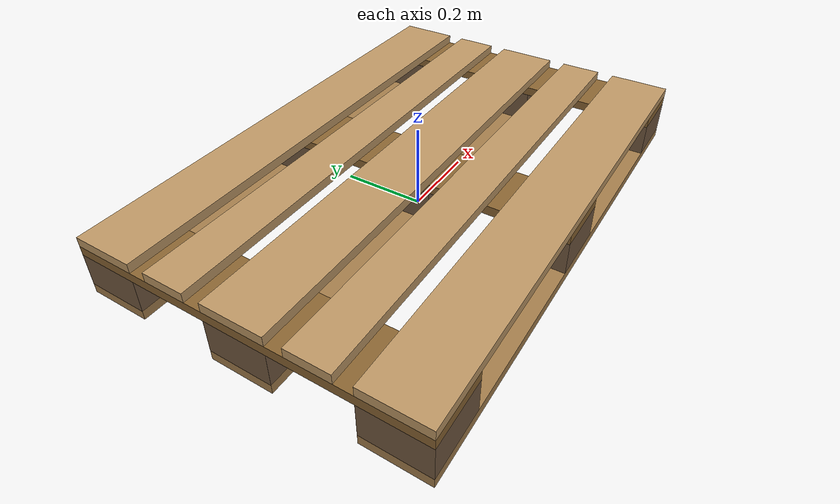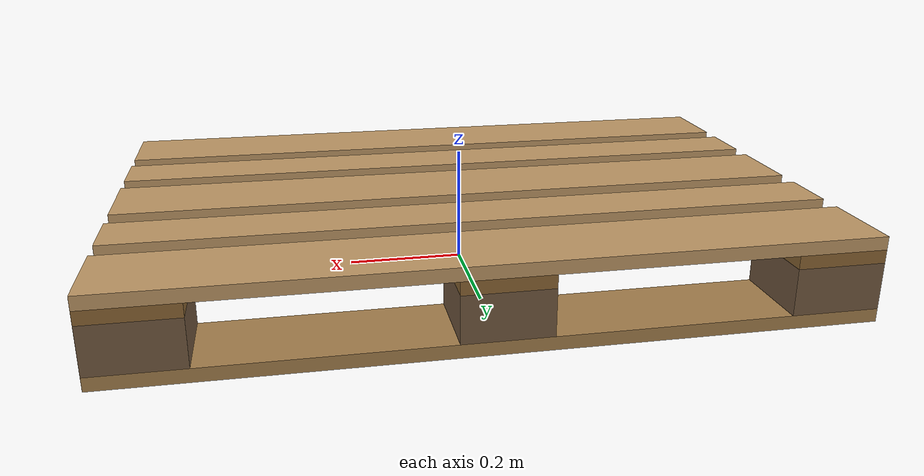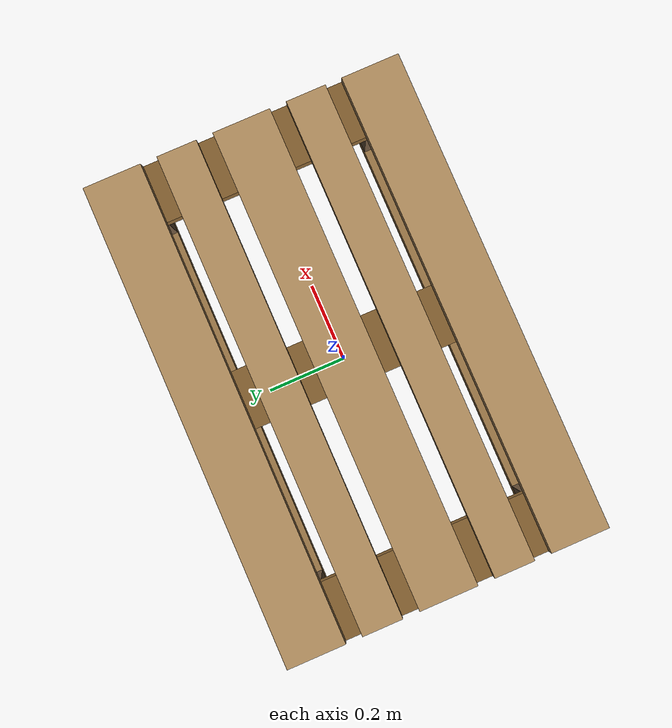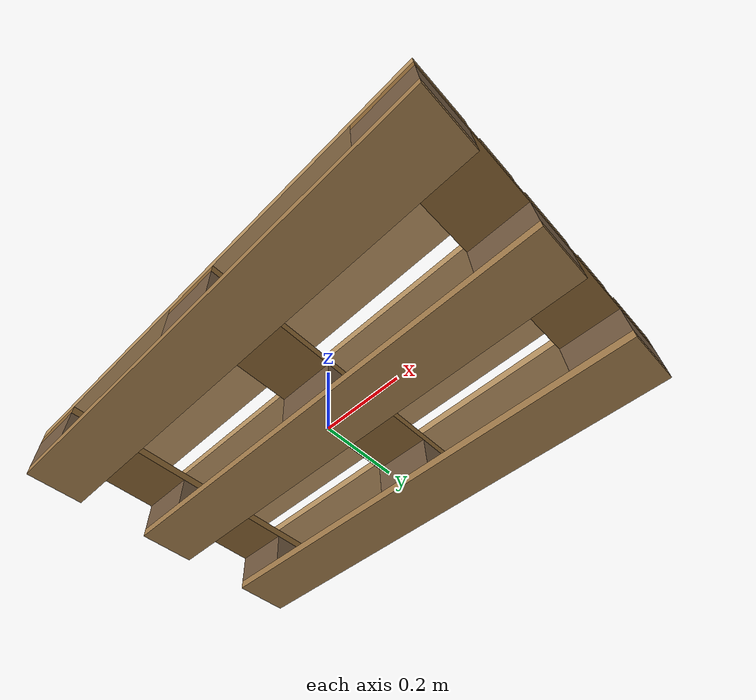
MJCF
<mujoco model="euro_pallet_realistic">
  <compiler angle="degree" coordinate="local"/>

  <asset>
    <material name="wood_light" rgba="0.75 0.60 0.40 1" reflectance="0.1"/>
    <material name="wood_mid"   rgba="0.65 0.50 0.30 1" reflectance="0.1"/>
    <material name="wood_dark"  rgba="0.55 0.40 0.20 1" reflectance="0.1"/>
    <material name="wood_block" rgba="0.45 0.35 0.25 1" reflectance="0.05"/>
  </asset>

  <worldbody>
    <body name="custom_pallet" pos="0 0 0">

      <freejoint/>

      <geom name="bot_board_left"  type="box" pos="0  0.3275 0.011" size="0.6 0.0725 0.011" material="wood_mid" mass="2"/>
      <geom name="bot_board_mid"   type="box" pos="0  0      0.011" size="0.6 0.0725 0.011" material="wood_mid" mass="2"/>
      <geom name="bot_board_right" type="box" pos="0 -0.3275 0.011" size="0.6 0.0725 0.011" material="wood_mid" mass="2"/>

      <geom name="block_fl" type="box" pos="0.5275  0.3275 0.061" size="0.0725 0.0725 0.039" material="wood_block" mass="0.5"/>
      <geom name="block_ml" type="box" pos="0       0.3275 0.061" size="0.0725 0.0725 0.039" material="wood_block" mass="0.5"/>
      <geom name="block_bl" type="box" pos="-0.5275 0.3275 0.061" size="0.0725 0.0725 0.039" material="wood_block" mass="0.5"/>
      <geom name="block_fm" type="box" pos="0.5275  0      0.061" size="0.0725 0.0725 0.039" material="wood_block" mass="0.5"/>
      <geom name="block_mm" type="box" pos="0       0      0.061" size="0.0725 0.0725 0.039" material="wood_block" mass="0.5"/>
      <geom name="block_bm" type="box" pos="-0.5275 0      0.061" size="0.0725 0.0725 0.039" material="wood_block" mass="0.5"/>
      <geom name="block_fr" type="box" pos="0.5275 -0.3275 0.061" size="0.0725 0.0725 0.039" material="wood_block" mass="0.5"/>
      <geom name="block_mr" type="box" pos="0      -0.3275 0.061" size="0.0725 0.0725 0.039" material="wood_block" mass="0.5"/>
      <geom name="block_br" type="box" pos="-0.5275 -0.3275 0.061" size="0.0725 0.0725 0.039" material="wood_block" mass="0.5"/>

      <geom name="cross_front" type="box" pos="0.5275 0 0.111" size="0.0725 0.4 0.011" material="wood_dark" mass="1.5"/>
      <geom name="cross_mid"   type="box" pos="0      0 0.111" size="0.0725 0.4 0.011" material="wood_dark" mass="1.5"/>
      <geom name="cross_back"  type="box" pos="-0.5275 0 0.111" size="0.0725 0.4 0.011" material="wood_dark" mass="1.5"/>

      <geom name="top_board_l"  type="box" pos="0  0.3275 0.133" size="0.6 0.0725 0.011" material="wood_light" mass="2" friction="1.2 0.005 0.0001"/>
      <geom name="top_board_il" type="box" pos="0  0.164  0.133" size="0.6 0.05   0.011" material="wood_light" mass="1.5" friction="1.2 0.005 0.0001"/>

      <geom name="g0" type="box" pos="0  0      0.133" size="0.6 0.0725 0.011" material="wood_light" mass="2" friction="1.2 0.005 0.0001"/>

      <geom name="top_board_ir" type="box" pos="0 -0.164  0.133" size="0.6 0.05   0.011" material="wood_light" mass="1.5" friction="1.2 0.005 0.0001"/>
      <geom name="top_board_r"  type="box" pos="0 -0.3275 0.133" size="0.6 0.0725 0.011" material="wood_light" mass="2" friction="1.2 0.005 0.0001"/>

    </body>
  </worldbody>
</mujoco>
